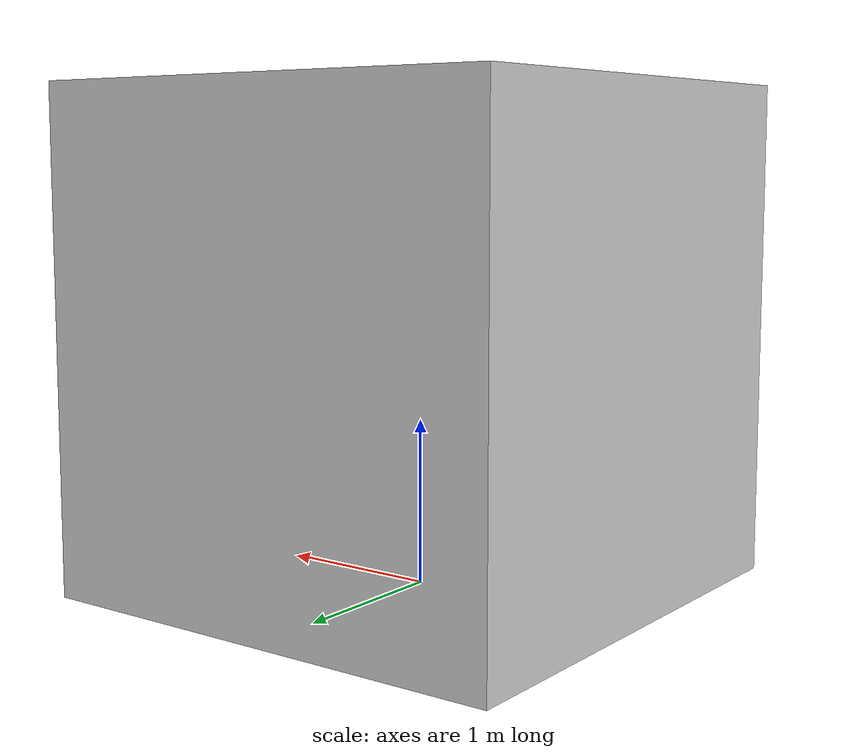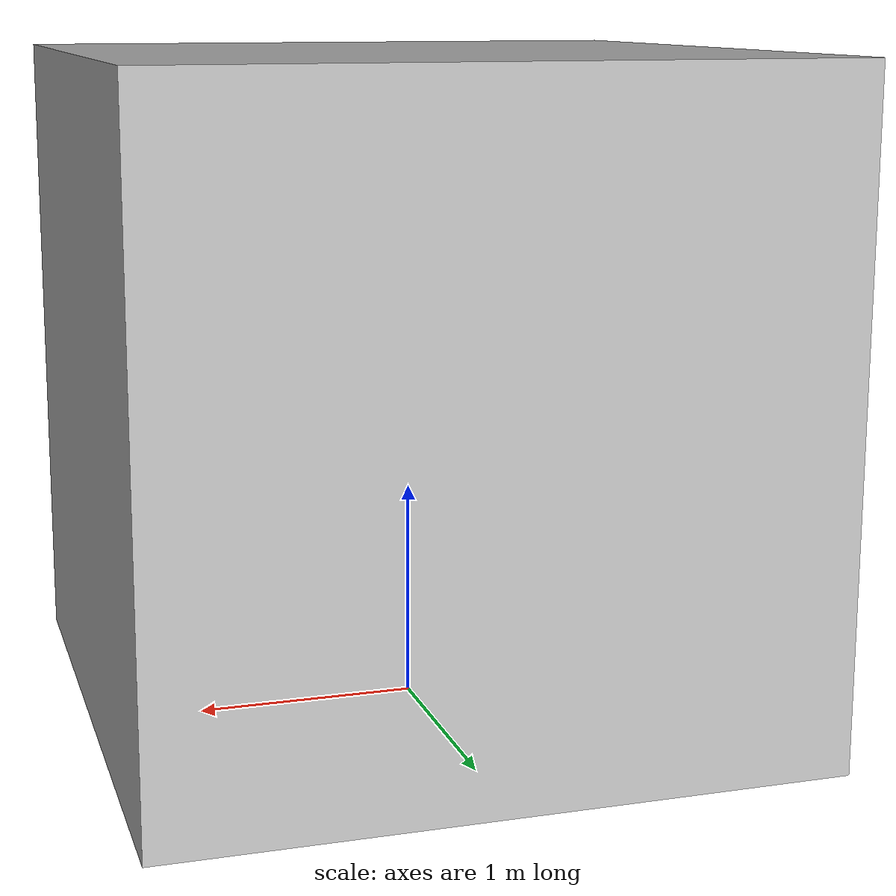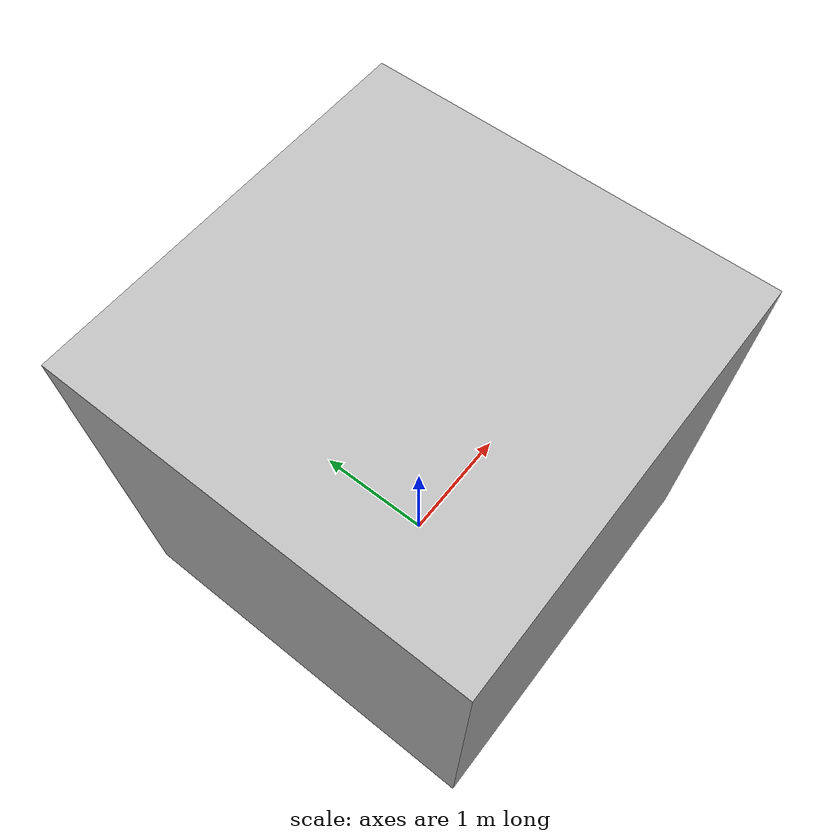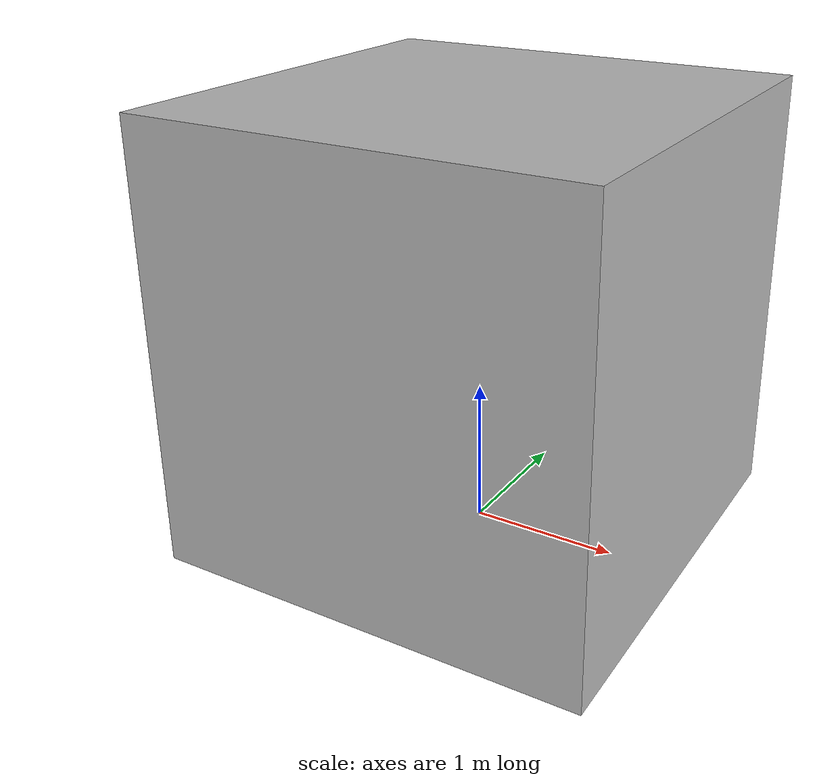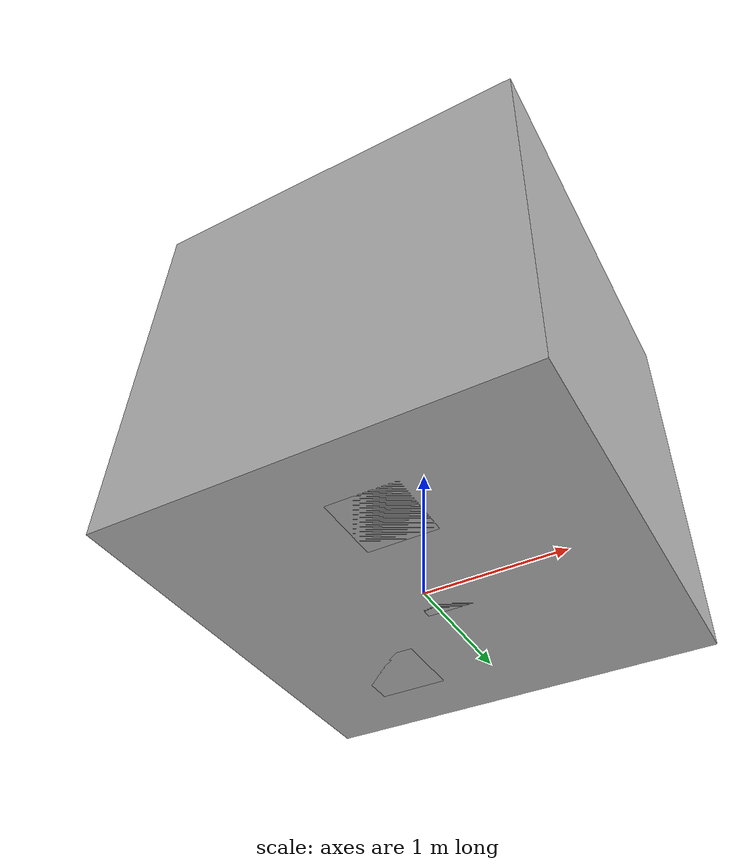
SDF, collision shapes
<?xml version="1.0"?>
<sdf version="1.6">
  <model name="vrx_ground_station">
    <static>true</static>
    <include>
      <name>tent</name>
      <uri>model://vrx_tent</uri>
    </include>
    <include>
      <name>table_a</name>
      <pose>0.5 0.9 0.0 0.0 0.0 0.0</pose>
      <uri>model://vrx_foldable_table</uri>
    </include>
    <include>
      <name>table_b</name>
      <pose>1.0 -0.5 0.0 0.0 0.0 1.57</pose>
      <uri>model://vrx_foldable_table</uri>
    </include>
    <include>
      <name>chair_a</name>
      <pose>0.2 0 0 0 0 1.57</pose>
      <uri>model://vrx_foldable_chair</uri>
    </include>
    <include>
      <name>chair_b</name>
      <pose>0.2 -0.8 0 0 0 1.57</pose>
      <uri>model://vrx_foldable_chair</uri>
    </include>
    <include>
      <name>chair_c</name>
      <pose>-0.6 0.8 0 0 0 1.57</pose>
      <uri>model://vrx_foldable_chair</uri>
    </include>
  </model>
</sdf>

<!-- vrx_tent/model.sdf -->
<sdf version="1.6">
  <model name="vrx_tent">
    <static>true</static>
    <link name="base_link">
      <visual name="visual">
        <geometry>
           <mesh>
            <uri>model://vrx_tent/mesh/tent.dae</uri>
          </mesh>
        </geometry>
      </visual>
      <collision name="collision">
        <pose>0 0 1.5 0 0 0</pose>
        <geometry>
          <box>
            <size>3.0 3.0 3.0</size>
          </box>
        </geometry>
      </collision>
    </link>
  </model>
</sdf>

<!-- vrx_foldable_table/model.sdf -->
<sdf version="1.6">
  <model name="vrx_foldable_table">
    <static>true</static>
    <link name="base_link">
      <visual name="visual">
        <geometry>
          <mesh>
            <uri>model://vrx_foldable_table/mesh/foldable_table.dae</uri>
          </mesh>
        </geometry>
      </visual>
      <collision name="collision">
        <pose>0 0 0.35 0 0 0</pose>
        <geometry>
          <box>
            <size>1.82 0.74 0.67</size>
          </box>
        </geometry>
      </collision>
    </link>
  </model>
</sdf>

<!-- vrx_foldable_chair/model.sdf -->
<sdf version="1.6">
  <model name="vrx_foldable_chair">
    <static>true</static>
    <link name="base_link">
      <visual name="visual">
        <geometry>
          <mesh>
            <scale>0.1 0.1 0.1</scale>
            <uri>model://vrx_foldable_chair/mesh/foldable_chair.dae</uri>
          </mesh>
        </geometry>
      </visual>
      <collision name="collision">
        <pose>0 0.05 0.4 0 0 0</pose>
        <geometry>
          <box>
            <size>0.5 0.5 0.8</size>
          </box>
        </geometry>
      </collision>
    </link>
  </model>
</sdf>
